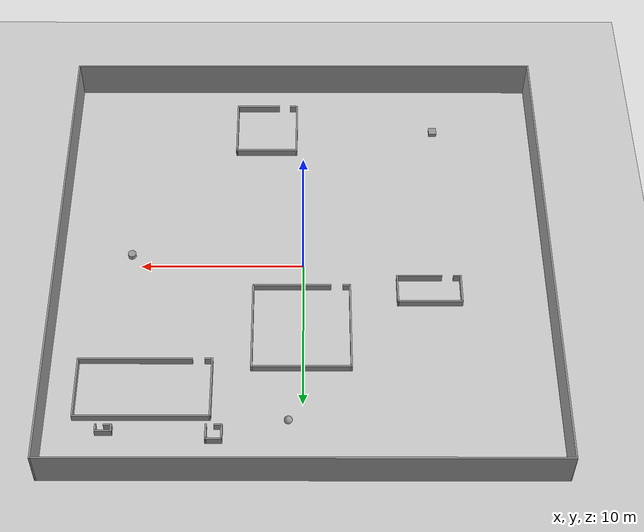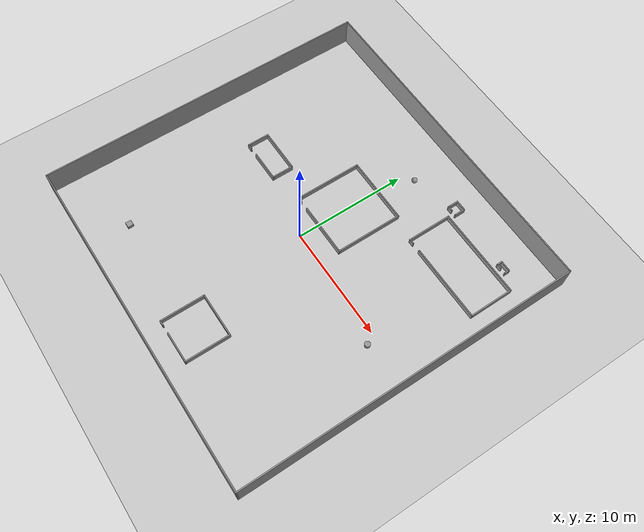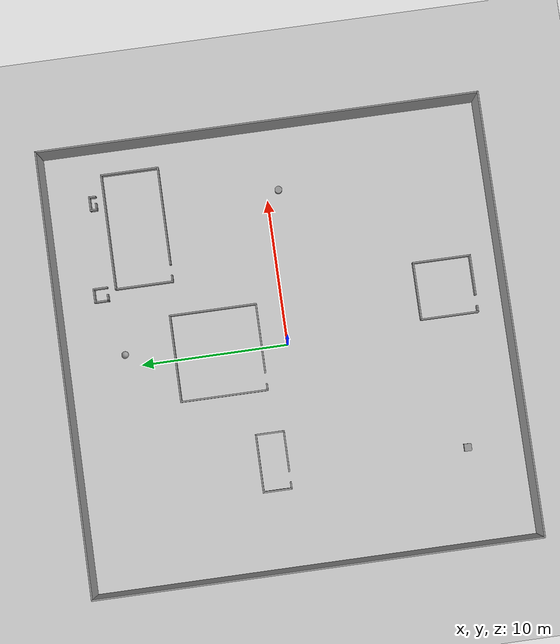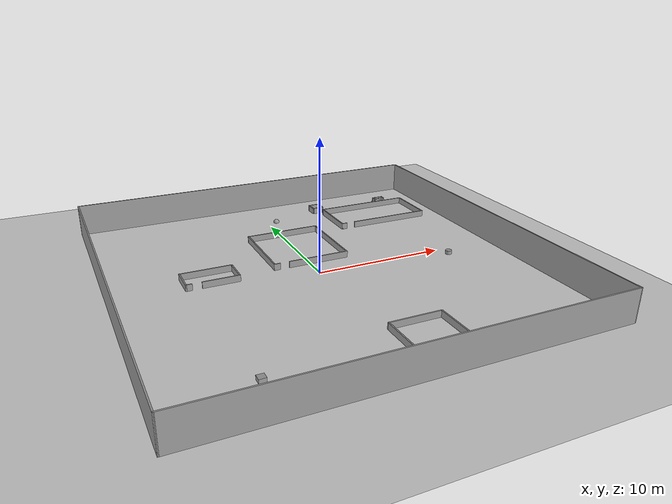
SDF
<sdf version="1.6">
  <world name="default">
    <light name="sun" type="directional">
      <cast_shadows>1</cast_shadows>
      <pose frame="">0 0 10 0 -0 0</pose>
      <diffuse>0.8 0.8 0.8 1</diffuse>
      <specular>0.2 0.2 0.2 1</specular>
      <attenuation>
        <range>1000</range>
        <constant>0.9</constant>
        <linear>0.01</linear>
        <quadratic>0.001</quadratic>
      </attenuation>
      <direction>-0.5 0.1 -0.9</direction>
    </light>
    <model name="ground_plane">
      <static>1</static>
      <link name="link">
        <collision name="collision">
          <geometry>
            <plane>
              <normal>0 0 1</normal>
              <size>30 30</size>
            </plane>
          </geometry>
          <surface>
            <contact>
              <collide_bitmask>65535</collide_bitmask>
              <ode />
            </contact>
            <friction>
              <ode>
                <mu>100</mu>
                <mu2>50</mu2>
              </ode>
              <torsional>
                <ode />
              </torsional>
            </friction>
            <bounce />
          </surface>
          <max_contacts>15</max_contacts>
        </collision>
        <visual name="visual">
          <cast_shadows>0</cast_shadows>
          <geometry>
            <plane>
              <normal>0 0 1</normal>
              <size>30 30</size>
            </plane>
          </geometry>
          <material>
            <script>
              <uri>file://media/materials/scripts/gazebo.material</uri>
              <name>Gazebo/Grey</name>
            </script>
          </material>
        </visual>
        <self_collide>0</self_collide>
        <enable_wind>0</enable_wind>
        <kinematic>0</kinematic>
      </link>
    </model>
     <model name="outsidewall.sdf">
    <pose frame="">0 0 0 0 -0 0</pose>
    <link name="Wall_3">
      <collision name="Wall_3_Collision">
        <geometry>
          <box>
            <size>30 0.10 2.5</size>
          </box>
        </geometry>
        <pose frame="">0 0 1.25 0 -0 0</pose>
      </collision>
      <visual name="Wall_3_Visual">
        <pose frame="">0 0 1.25 0 -0 0</pose>
        <geometry>
          <box>
            <size>30 0.10 2.5</size>
          </box>
        </geometry>
        <material>
          <script>
            <uri>file://media/materials/scripts/gazebo.material</uri>
            <name>Gazebo/Grey</name>
          </script>
          <ambient>1 1 1 1</ambient>
        </material>
        <meta>
          <layer>0</layer>
        </meta>
      </visual>
      <pose frame="">0 14.95 0 0 -0 0</pose>
    </link>
    <link name="Wall_5">
      <collision name="Wall_5_Collision">
        <geometry>
          <box>
            <size>30 0.10 2.5</size>
          </box>
        </geometry>
        <pose frame="">0 0 1.25 0 -0 0</pose>
      </collision>
      <visual name="Wall_5_Visual">
        <pose frame="">0 0 1.25 0 -0 0</pose>
        <geometry>
          <box>
            <size>30 0.10 2.5</size>
          </box>
        </geometry>
        <material>
          <script>
            <uri>file://media/materials/scripts/gazebo.material</uri>
            <name>Gazebo/Grey</name>
          </script>
          <ambient>1 1 1 1</ambient>
        </material>
        <meta>
          <layer>0</layer>
        </meta>
      </visual>
      <pose frame="">-14.95 0 0 0 -0 1.5707</pose>
    </link>
    <link name="Wall_6">
      <collision name="Wall_6_Collision">
        <geometry>
          <box>
            <size>30 0.10 2.5</size>
          </box>
        </geometry>
        <pose frame="">0 0 1.25 0 -0 0</pose>
      </collision>
      <visual name="Wall_6_Visual">
        <pose frame="">0 0 1.25 0 -0 0</pose>
        <geometry>
          <box>
            <size>30 0.10 2.5</size>
          </box>
        </geometry>
        <material>
          <script>
            <uri>file://media/materials/scripts/gazebo.material</uri>
            <name>Gazebo/Grey</name>
          </script>
          <ambient>1 1 1 1</ambient>
        </material>
        <meta>
          <layer>0</layer>
        </meta>
      </visual>
      <pose frame="">0 -14.95 0 0 -0 0</pose>
    </link>
    <link name="Wall_7">
      <collision name="Wall_7_Collision">
        <geometry>
          <box>
            <size>30 0.10 2.5</size>
          </box>
        </geometry>
        <pose frame="">0 0 1.25 0 -0 0</pose>
      </collision>
      <visual name="Wall_7_Visual">
        <pose frame="">0 0 1.25 0 -0 0</pose>
        <geometry>
          <box>
            <size>30 0.10 2.5</size>
          </box>
        </geometry>
        <material>
          <script>
            <uri>file://media/materials/scripts/gazebo.material</uri>
            <name>Gazebo/Grey</name>
          </script>
          <ambient>1 1 1 1</ambient>
        </material>
        <meta>
          <layer>0</layer>
        </meta>
      </visual>
      <pose frame="">14.95 0 0 0 -0 1.5707</pose>
    </link>
    <static>1</static>
  </model>
    <gravity>0 0 -9.8</gravity>
    <magnetic_field>6e-06 2.3e-05 -4.2e-05</magnetic_field>
    <atmosphere type="adiabatic" />
    <physics default="0" name="default_physics" type="ode">
      <max_step_size>0.001</max_step_size>
      <real_time_factor>1</real_time_factor>
      <real_time_update_rate>1000</real_time_update_rate>
    </physics>
    <scene>
      <ambient>0.4 0.4 0.4 1</ambient>
      <background>0.7 0.7 0.7 1</background>
      <shadows>1</shadows>
    </scene>
    <audio>
      <device>default</device>
    </audio>
    <wind />
    <spherical_coordinates>
      <surface_model>EARTH_WGS84</surface_model>
      <latitude_deg>0</latitude_deg>
      <longitude_deg>0</longitude_deg>
      <elevation>0</elevation>
      <heading_deg>0</heading_deg>
    </spherical_coordinates>
    <gui fullscreen="0">
      <camera name="user_camera">
        <pose frame="">17.6964 -3.39131 8.77294 0 0.343643 2.9522</pose>
        <view_controller>orbit</view_controller>
        <projection_type>perspective</projection_type>
      </camera>
    </gui>

  <model name="shape4">
    <pose frame="">5.1 12.1 0 0 -0 0</pose>
    <link name="Wall_14">
      <collision name="Wall_14_Collision">
        <geometry>
          <box>
            <size>1 0.1 0.5</size>
          </box>
        </geometry>
        <pose frame="">0 0 0.25 0 -0 0</pose>
      </collision>
      <visual name="Wall_14_Visual">
        <pose frame="">0 0 0.25 0 -0 0</pose>
        <geometry>
          <box>
            <size>1 0.1 0.5</size>
          </box>
        </geometry>
        <material>
          <script>
            <uri>file://media/materials/scripts/gazebo.material</uri>
            <name>Gazebo/Grey</name>
          </script>
          <ambient>1 1 1 1</ambient>
        </material>
        <meta>
          <layer>0</layer>
        </meta>
      </visual>
      <pose frame="">-0 0.45 0 0 -0 0</pose>
    </link>
    <link name="Wall_15">
      <collision name="Wall_15_Collision">
        <geometry>
          <box>
            <size>1 0.1 0.5</size>
          </box>
        </geometry>
        <pose frame="">0 0 0.25 0 -0 0</pose>
      </collision>
      <visual name="Wall_15_Visual">
        <pose frame="">0 0 0.25 0 -0 0</pose>
        <geometry>
          <box>
            <size>1 0.1 0.5</size>
          </box>
        </geometry>
        <material>
          <script>
            <uri>file://media/materials/scripts/gazebo.material</uri>
            <name>Gazebo/Grey</name>
          </script>
          <ambient>1 1 1 1</ambient>
        </material>
        <meta>
          <layer>0</layer>
        </meta>
      </visual>
      <pose frame="">0.45 -0 0 0 -0 -1.5708</pose>
    </link>
    <link name="Wall_17">
      <collision name="Wall_17_Collision">
        <geometry>
          <box>
            <size>1 0.1 0.5</size>
          </box>
        </geometry>
        <pose frame="">0 0 0.25 0 -0 0</pose>
      </collision>
      <visual name="Wall_17_Visual">
        <pose frame="">0 0 0.25 0 -0 0</pose>
        <geometry>
          <box>
            <size>1 0.1 0.5</size>
          </box>
        </geometry>
        <material>
          <script>
            <uri>file://media/materials/scripts/gazebo.material</uri>
            <name>Gazebo/Grey</name>
          </script>
          <ambient>1 1 1 1</ambient>
        </material>
        <meta>
          <layer>0</layer>
        </meta>
      </visual>
      <pose frame="">-0.45 -0 0 0 -0 -1.5708</pose>
    </link>
    <link name="Wall_18">
      <collision name="Wall_18_Collision">
        <geometry>
          <box>
            <size>0.5 0.1 0.5</size>
          </box>
        </geometry>
        <pose frame="">0 0 0.25 0 -0 0</pose>
      </collision>
      <visual name="Wall_18_Visual">
        <pose frame="">0 0 0.25 0 -0 0</pose>
        <geometry>
          <box>
            <size>0.5 0.1 0.5</size>
          </box>
        </geometry>
        <material>
          <script>
            <uri>file://media/materials/scripts/gazebo.material</uri>
            <name>Gazebo/Grey</name>
          </script>
          <ambient>1 1 1 1</ambient>
        </material>
        <meta>
          <layer>0</layer>
        </meta>
      </visual>
      <pose frame="">-0.25 -0.45 0 0 -0 0</pose>
    </link>
    <static>1</static>
  </model>
<model name="cylinder_d=50">
    <link name="link_0">
      <inertial>
        <mass>1</mass>
        <inertia>
          <ixx>0.145833</ixx>
          <ixy>0</ixy>
          <ixz>0</ixz>
          <iyy>0.145833</iyy>
          <iyz>0</iyz>
          <izz>0.125</izz>
        </inertia>
        <pose frame="">0 0 0 0 -0 0</pose>
      </inertial>
      <pose frame="">10.65 -0.85 0 0 -0 0</pose>
      <gravity>1</gravity>
      <self_collide>0</self_collide>
      <kinematic>0</kinematic>
      <enable_wind>0</enable_wind>
      <visual name="visual">
        <pose frame="">0 0 0 0 -0 0</pose>
        <geometry>
          <cylinder>
            <radius>0.25</radius>
            <length>0.5</length>
          </cylinder>
        </geometry>
        <material>
          <lighting>1</lighting>
          <script>
            <uri>file://media/materials/scripts/gazebo.material</uri>
            <name>Gazebo/Grey</name>
          </script>
          <shader type="vertex">
            <normal_map>__default__</normal_map>
          </shader>
          <ambient>0.3 0.3 0.3 1</ambient>
          <diffuse>0.7 0.7 0.7 1</diffuse>
          <specular>0.01 0.01 0.01 1</specular>
          <emissive>0 0 0 1</emissive>
        </material>
        <transparency>0</transparency>
        <cast_shadows>1</cast_shadows>
      </visual>
      <collision name="collision">
        <laser_retro>0</laser_retro>
        <max_contacts>10</max_contacts>
        <pose frame="">0 0 0 0 -0 0</pose>
        <geometry>
          <cylinder>
            <radius>0.25</radius>
            <length>0.5</length>
          </cylinder>
        </geometry>
        <surface>
          <friction>
            <ode>
              <mu>1</mu>
              <mu2>1</mu2>
              <fdir1>0 0 0</fdir1>
              <slip1>0</slip1>
              <slip2>0</slip2>
            </ode>
            <torsional>
              <coefficient>1</coefficient>
              <patch_radius>0</patch_radius>
              <surface_radius>0</surface_radius>
              <use_patch_radius>1</use_patch_radius>
              <ode>
                <slip>0</slip>
              </ode>
            </torsional>
          </friction>
          <bounce>
            <restitution_coefficient>0</restitution_coefficient>
            <threshold>1e+06</threshold>
          </bounce>
          <contact>
            <collide_without_contact>0</collide_without_contact>
            <collide_without_contact_bitmask>1</collide_without_contact_bitmask>
            <collide_bitmask>1</collide_bitmask>
            <ode>
              <soft_cfm>0</soft_cfm>
              <soft_erp>0.2</soft_erp>
              <kp>1e+13</kp>
              <kd>1</kd>
              <max_vel>0.01</max_vel>
              <min_depth>0</min_depth>
            </ode>
            <bullet>
              <split_impulse>1</split_impulse>
              <split_impulse_penetration_threshold>-0.01</split_impulse_penetration_threshold>
              <soft_cfm>0</soft_cfm>
              <soft_erp>0.2</soft_erp>
              <kp>1e+13</kp>
              <kd>1</kd>
            </bullet>
          </contact>
        </surface>
      </collision>
    </link>
    <static>0</static>
    <allow_auto_disable>1</allow_auto_disable>
  </model>
<model name="ball_d=50">
    <link name="link_1">
      <inertial>
        <mass>1</mass>
        <inertia>
          <ixx>0.1</ixx>
          <ixy>0</ixy>
          <ixz>0</ixz>
          <iyy>0.1</iyy>
          <iyz>0</iyz>
          <izz>0.1</izz>
        </inertia>
        <pose frame="">0 0 0 0 -0 0</pose>
      </inertial>
      <pose frame="">0.85 11.05 0 0 -0 0</pose>
      <gravity>1</gravity>
      <self_collide>0</self_collide>
      <kinematic>0</kinematic>
      <enable_wind>0</enable_wind>
      <visual name="visual">
        <pose frame="">0 0 0 0 -0 0</pose>
        <geometry>
          <sphere>
            <radius>0.25</radius>
          </sphere>
        </geometry>
        <material>
          <lighting>1</lighting>
          <script>
            <uri>file://media/materials/scripts/gazebo.material</uri>
            <name>Gazebo/Grey</name>
          </script>
          <shader type="vertex">
            <normal_map>__default__</normal_map>
          </shader>
          <ambient>0.3 0.3 0.3 1</ambient>
          <diffuse>0.7 0.7 0.7 1</diffuse>
          <specular>0.01 0.01 0.01 1</specular>
          <emissive>0 0 0 1</emissive>
        </material>
        <transparency>0</transparency>
        <cast_shadows>1</cast_shadows>
      </visual>
      <collision name="collision">
        <laser_retro>0</laser_retro>
        <max_contacts>10</max_contacts>
        <pose frame="">0 0 0 0 -0 0</pose>
        <geometry>
          <sphere>
            <radius>0.25</radius>
          </sphere>
        </geometry>
        <surface>
          <friction>
            <ode>
              <mu>1</mu>
              <mu2>1</mu2>
              <fdir1>0 0 0</fdir1>
              <slip1>0</slip1>
              <slip2>0</slip2>
            </ode>
            <torsional>
              <coefficient>1</coefficient>
              <patch_radius>0</patch_radius>
              <surface_radius>0</surface_radius>
              <use_patch_radius>1</use_patch_radius>
              <ode>
                <slip>0</slip>
              </ode>
            </torsional>
          </friction>
          <bounce>
            <restitution_coefficient>0</restitution_coefficient>
            <threshold>1e+06</threshold>
          </bounce>
          <contact>
            <collide_without_contact>0</collide_without_contact>
            <collide_without_contact_bitmask>1</collide_without_contact_bitmask>
            <collide_bitmask>1</collide_bitmask>
            <ode>
              <soft_cfm>0</soft_cfm>
              <soft_erp>0.2</soft_erp>
              <kp>1e+13</kp>
              <kd>1</kd>
              <max_vel>0.01</max_vel>
              <min_depth>0</min_depth>
            </ode>
            <bullet>
              <split_impulse>1</split_impulse>
              <split_impulse_penetration_threshold>-0.01</split_impulse_penetration_threshold>
              <soft_cfm>0</soft_cfm>
              <soft_erp>0.2</soft_erp>
              <kp>1e+13</kp>
              <kd>1</kd>
            </bullet>
          </contact>
        </surface>
      </collision>
    </link>
    <static>0</static>
    <allow_auto_disable>1</allow_auto_disable>
  </model>
<model name="shape3">
    <pose frame="">9.3 9.1 0 0 -0 0</pose>
    <link name="Wall_11">
      <collision name="Wall_11_Collision">
        <geometry>
          <box>
            <size>4 0.1 0.5</size>
          </box>
        </geometry>
        <pose frame="">0 0 0.25 0 -0 0</pose>
      </collision>
      <visual name="Wall_11_Visual">
        <pose frame="">0 0 0.25 0 -0 0</pose>
        <geometry>
          <box>
            <size>4 0.1 0.5</size>
          </box>
        </geometry>
        <material>
          <script>
            <uri>file://media/materials/scripts/gazebo.material</uri>
            <name>Gazebo/Grey</name>
          </script>
          <ambient>1 1 1 1</ambient>
        </material>
        <meta>
          <layer>0</layer>
        </meta>
      </visual>
      <pose frame="">-3.95 0 0 0 -0 -1.5708</pose>
    </link>
    <link name="Wall_12">
      <collision name="Wall_12_Collision">
        <geometry>
          <box>
            <size>0.5 0.1 0.5</size>
          </box>
        </geometry>
        <pose frame="">0 0 0.25 0 -0 0</pose>
      </collision>
      <visual name="Wall_12_Visual">
        <pose frame="">0 0 0.25 0 -0 0</pose>
        <geometry>
          <box>
            <size>0.5 0.1 0.5</size>
          </box>
        </geometry>
        <material>
          <script>
            <uri>file://media/materials/scripts/gazebo.material</uri>
            <name>Gazebo/Grey</name>
          </script>
          <ambient>1 1 1 1</ambient>
        </material>
        <meta>
          <layer>0</layer>
        </meta>
      </visual>
      <pose frame="">-3.75 -1.95 0 0 -0 0</pose>
    </link>
    <link name="Wall_7">
      <collision name="Wall_7_Collision">
        <geometry>
          <box>
            <size>8 0.1 0.5</size>
          </box>
        </geometry>
        <pose frame="">0 0 0.25 0 -0 0</pose>
      </collision>
      <visual name="Wall_7_Visual">
        <pose frame="">0 0 0.25 0 -0 0</pose>
        <geometry>
          <box>
            <size>8 0.1 0.5</size>
          </box>
        </geometry>
        <material>
          <script>
            <uri>file://media/materials/scripts/gazebo.material</uri>
            <name>Gazebo/Grey</name>
          </script>
          <ambient>1 1 1 1</ambient>
        </material>
        <meta>
          <layer>0</layer>
        </meta>
      </visual>
      <pose frame="">-0 1.95 0 0 -0 0</pose>
    </link>
    <link name="Wall_8">
      <collision name="Wall_8_Collision">
        <geometry>
          <box>
            <size>4 0.1 0.5</size>
          </box>
        </geometry>
        <pose frame="">0 0 0.25 0 -0 0</pose>
      </collision>
      <visual name="Wall_8_Visual">
        <pose frame="">0 0 0.25 0 -0 0</pose>
        <geometry>
          <box>
            <size>4 0.1 0.5</size>
          </box>
        </geometry>
        <material>
          <script>
            <uri>file://media/materials/scripts/gazebo.material</uri>
            <name>Gazebo/Grey</name>
          </script>
          <ambient>1 1 1 1</ambient>
        </material>
        <meta>
          <layer>0</layer>
        </meta>
      </visual>
      <pose frame="">3.95 0 0 0 -0 -1.5708</pose>
    </link>
    <link name="Wall_9">
      <collision name="Wall_9_Collision">
        <geometry>
          <box>
            <size>6.8 0.1 0.5</size>
          </box>
        </geometry>
        <pose frame="">0 0 0.25 0 -0 0</pose>
      </collision>
      <visual name="Wall_9_Visual">
        <pose frame="">0 0 0.25 0 -0 0</pose>
        <geometry>
          <box>
            <size>6.8 0.1 0.5</size>
          </box>
        </geometry>
        <material>
          <script>
            <uri>file://media/materials/scripts/gazebo.material</uri>
            <name>Gazebo/Grey</name>
          </script>
          <ambient>1 1 1 1</ambient>
        </material>
        <meta>
          <layer>0</layer>
        </meta>
      </visual>
      <pose frame="">0.6 -1.95 0 0 -0 3.14159</pose>
    </link>
    <static>1</static>
  </model>
<model name="shape7">
    <pose frame="">0.1 4.7 0 0 -0 0</pose>
    <link name="Wall_34">
      <collision name="Wall_34_Collision">
        <geometry>
          <box>
            <size>6 0.1 0.5</size>
          </box>
        </geometry>
        <pose frame="">0 0 0.25 0 -0 0</pose>
      </collision>
      <visual name="Wall_34_Visual">
        <pose frame="">0 0 0.25 0 -0 0</pose>
        <geometry>
          <box>
            <size>6 0.1 0.5</size>
          </box>
        </geometry>
        <material>
          <script>
            <uri>file://media/materials/scripts/gazebo.material</uri>
            <name>Gazebo/Grey</name>
          </script>
          <ambient>1 1 1 1</ambient>
        </material>
        <meta>
          <layer>0</layer>
        </meta>
      </visual>
      <pose frame="">0 2.95 0 0 -0 0</pose>
    </link>
    <link name="Wall_35">
      <collision name="Wall_35_Collision">
        <geometry>
          <box>
            <size>6 0.1 0.5</size>
          </box>
        </geometry>
        <pose frame="">0 0 0.25 0 -0 0</pose>
      </collision>
      <visual name="Wall_35_Visual">
        <pose frame="">0 0 0.25 0 -0 0</pose>
        <geometry>
          <box>
            <size>6 0.1 0.5</size>
          </box>
        </geometry>
        <material>
          <script>
            <uri>file://media/materials/scripts/gazebo.material</uri>
            <name>Gazebo/Grey</name>
          </script>
          <ambient>1 1 1 1</ambient>
        </material>
        <meta>
          <layer>0</layer>
        </meta>
      </visual>
      <pose frame="">2.95 0 0 0 -0 -1.5708</pose>
    </link>
    <link name="Wall_36">
      <collision name="Wall_36_Collision">
        <geometry>
          <box>
            <size>4.8 0.1 0.5</size>
          </box>
        </geometry>
        <pose frame="">0 0 0.25 0 -0 0</pose>
      </collision>
      <visual name="Wall_36_Visual">
        <pose frame="">0 0 0.25 0 -0 0</pose>
        <geometry>
          <box>
            <size>4.8 0.1 0.5</size>
          </box>
        </geometry>
        <material>
          <script>
            <uri>file://media/materials/scripts/gazebo.material</uri>
            <name>Gazebo/Grey</name>
          </script>
          <ambient>1 1 1 1</ambient>
        </material>
        <meta>
          <layer>0</layer>
        </meta>
      </visual>
      <pose frame="">0.6 -2.95 0 0 -0 3.14159</pose>
    </link>
    <link name="Wall_38">
      <collision name="Wall_38_Collision">
        <geometry>
          <box>
            <size>6 0.1 0.5</size>
          </box>
        </geometry>
        <pose frame="">0 0 0.25 0 -0 0</pose>
      </collision>
      <visual name="Wall_38_Visual">
        <pose frame="">0 0 0.25 0 -0 0</pose>
        <geometry>
          <box>
            <size>6 0.1 0.5</size>
          </box>
        </geometry>
        <material>
          <script>
            <uri>file://media/materials/scripts/gazebo.material</uri>
            <name>Gazebo/Grey</name>
          </script>
          <ambient>1 1 1 1</ambient>
        </material>
        <meta>
          <layer>0</layer>
        </meta>
      </visual>
      <pose frame="">-2.95 0 0 0 -0 -1.5708</pose>
    </link>
    <link name="Wall_39">
      <collision name="Wall_39_Collision">
        <geometry>
          <box>
            <size>0.5 0.1 0.5</size>
          </box>
        </geometry>
        <pose frame="">0 0 0.25 0 -0 0</pose>
      </collision>
      <visual name="Wall_39_Visual">
        <pose frame="">0 0 0.25 0 -0 0</pose>
        <geometry>
          <box>
            <size>0.5 0.1 0.5</size>
          </box>
        </geometry>
        <material>
          <script>
            <uri>file://media/materials/scripts/gazebo.material</uri>
            <name>Gazebo/Grey</name>
          </script>
          <ambient>1 1 1 1</ambient>
        </material>
        <meta>
          <layer>0</layer>
        </meta>
      </visual>
      <pose frame="">-2.75 -2.95 0 0 -0 0</pose>
    </link>
    <static>1</static>
  </model>
<model name="shape6">
    <pose frame="">2.4 -11.2 0 0 -0 0</pose>
    <link name="Wall_27">
      <collision name="Wall_27_Collision">
        <geometry>
          <box>
            <size>4 0.1 0.5</size>
          </box>
        </geometry>
        <pose frame="">0 0 0.25 0 -0 0</pose>
      </collision>
      <visual name="Wall_27_Visual">
        <pose frame="">0 0 0.25 0 -0 0</pose>
        <geometry>
          <box>
            <size>4 0.1 0.5</size>
          </box>
        </geometry>
        <material>
          <script>
            <uri>file://media/materials/scripts/gazebo.material</uri>
            <name>Gazebo/Grey</name>
          </script>
          <ambient>1 1 1 1</ambient>
        </material>
        <meta>
          <layer>0</layer>
        </meta>
      </visual>
      <pose frame="">0 1.95 0 0 -0 0</pose>
    </link>
    <link name="Wall_28">
      <collision name="Wall_28_Collision">
        <geometry>
          <box>
            <size>4 0.1 0.5</size>
          </box>
        </geometry>
        <pose frame="">0 0 0.25 0 -0 0</pose>
      </collision>
      <visual name="Wall_28_Visual">
        <pose frame="">0 0 0.25 0 -0 0</pose>
        <geometry>
          <box>
            <size>4 0.1 0.5</size>
          </box>
        </geometry>
        <material>
          <script>
            <uri>file://media/materials/scripts/gazebo.material</uri>
            <name>Gazebo/Grey</name>
          </script>
          <ambient>1 1 1 1</ambient>
        </material>
        <meta>
          <layer>0</layer>
        </meta>
      </visual>
      <pose frame="">1.95 -0 0 0 -0 -1.5708</pose>
    </link>
    <link name="Wall_29">
      <collision name="Wall_29_Collision">
        <geometry>
          <box>
            <size>2.8 0.1 0.5</size>
          </box>
        </geometry>
        <pose frame="">0 0 0.25 0 -0 0</pose>
      </collision>
      <visual name="Wall_29_Visual">
        <pose frame="">0 0 0.25 0 -0 0</pose>
        <geometry>
          <box>
            <size>2.8 0.1 0.5</size>
          </box>
        </geometry>
        <material>
          <script>
            <uri>file://media/materials/scripts/gazebo.material</uri>
            <name>Gazebo/Grey</name>
          </script>
          <ambient>1 1 1 1</ambient>
        </material>
        <meta>
          <layer>0</layer>
        </meta>
      </visual>
      <pose frame="">0.6 -1.95 0 0 -0 3.14159</pose>
    </link>
    <link name="Wall_31">
      <collision name="Wall_31_Collision">
        <geometry>
          <box>
            <size>4 0.1 0.5</size>
          </box>
        </geometry>
        <pose frame="">0 0 0.25 0 -0 0</pose>
      </collision>
      <visual name="Wall_31_Visual">
        <pose frame="">0 0 0.25 0 -0 0</pose>
        <geometry>
          <box>
            <size>4 0.1 0.5</size>
          </box>
        </geometry>
        <material>
          <script>
            <uri>file://media/materials/scripts/gazebo.material</uri>
            <name>Gazebo/Grey</name>
          </script>
          <ambient>1 1 1 1</ambient>
        </material>
        <meta>
          <layer>0</layer>
        </meta>
      </visual>
      <pose frame="">-1.95 -0 0 0 -0 -1.5708</pose>
    </link>
    <link name="Wall_32">
      <collision name="Wall_32_Collision">
        <geometry>
          <box>
            <size>0.5 0.1 0.5</size>
          </box>
        </geometry>
        <pose frame="">0 0 0.25 0 -0 0</pose>
      </collision>
      <visual name="Wall_32_Visual">
        <pose frame="">0 0 0.25 0 -0 0</pose>
        <geometry>
          <box>
            <size>0.5 0.1 0.5</size>
          </box>
        </geometry>
        <material>
          <script>
            <uri>file://media/materials/scripts/gazebo.material</uri>
            <name>Gazebo/Grey</name>
          </script>
          <ambient>1 1 1 1</ambient>
        </material>
        <meta>
          <layer>0</layer>
        </meta>
      </visual>
      <pose frame="">-1.75 -1.95 0 0 -0 0</pose>
    </link>
    <static>1</static>
  </model>
<model name="shape0">
    <pose frame="">11.4 11.85 0 0 -0 0</pose>
    <link name="Wall_0">
      <pose frame="">0 0.2 0 0 -0 0</pose>
      <self_collide>0</self_collide>
      <enable_wind>0</enable_wind>
      <kinematic>0</kinematic>
      <gravity>1</gravity>
      <inertial>
        <mass>1</mass>
        <pose frame="">0 0 0 0 -0 0</pose>
        <inertia>
          <ixx>1</ixx>
          <ixy>0</ixy>
          <ixz>0</ixz>
          <iyy>1</iyy>
          <iyz>0</iyz>
          <izz>1</izz>
        </inertia>
      </inertial>
      <visual name="Wall_0_Visual">
        <pose frame="">0 0 0.25 0 -0 0</pose>
        <geometry>
          <box>
            <size>1 0.1 0.5</size>
          </box>
        </geometry>
        <material>
          <script>
            <uri>file://media/materials/scripts/gazebo.material</uri>
            <name>Gazebo/Grey</name>
          </script>
          <ambient>1 1 1 1</ambient>
          <shader type="vertex">
            <normal_map>__default__</normal_map>
          </shader>
          <diffuse>0.7 0.7 0.7 1</diffuse>
          <specular>0.01 0.01 0.01 1</specular>
          <emissive>0 0 0 1</emissive>
        </material>
        <meta>
          <layer>0</layer>
        </meta>
        <transparency>0</transparency>
        <cast_shadows>1</cast_shadows>
      </visual>
      <collision name="Wall_0_Collision">
        <laser_retro>0</laser_retro>
        <max_contacts>10</max_contacts>
        <pose frame="">0 0 0.25 0 -0 0</pose>
        <geometry>
          <box>
            <size>1 0.1 0.5</size>
          </box>
        </geometry>
        <surface>
          <friction>
            <ode>
              <mu>1</mu>
              <mu2>1</mu2>
              <fdir1>0 0 0</fdir1>
              <slip1>0</slip1>
              <slip2>0</slip2>
            </ode>
            <torsional>
              <coefficient>1</coefficient>
              <patch_radius>0</patch_radius>
              <surface_radius>0</surface_radius>
              <use_patch_radius>1</use_patch_radius>
              <ode>
                <slip>0</slip>
              </ode>
            </torsional>
          </friction>
          <bounce>
            <restitution_coefficient>0</restitution_coefficient>
            <threshold>1e+06</threshold>
          </bounce>
          <contact>
            <collide_without_contact>0</collide_without_contact>
            <collide_without_contact_bitmask>1</collide_without_contact_bitmask>
            <collide_bitmask>1</collide_bitmask>
            <ode>
              <soft_cfm>0</soft_cfm>
              <soft_erp>0.2</soft_erp>
              <kp>1e+13</kp>
              <kd>1</kd>
              <max_vel>0.01</max_vel>
              <min_depth>0</min_depth>
            </ode>
            <bullet>
              <split_impulse>1</split_impulse>
              <split_impulse_penetration_threshold>-0.01</split_impulse_penetration_threshold>
              <soft_cfm>0</soft_cfm>
              <soft_erp>0.2</soft_erp>
              <kp>1e+13</kp>
              <kd>1</kd>
            </bullet>
          </contact>
        </surface>
      </collision>
    </link>
    <link name="Wall_2">
      <pose frame="">-0.45 0 0.01 0 0 -1.5708</pose>
      <self_collide>0</self_collide>
      <enable_wind>0</enable_wind>
      <kinematic>0</kinematic>
      <gravity>1</gravity>
      <inertial>
        <mass>1</mass>
        <pose frame="">0 0 0 0 -0 0</pose>
        <inertia>
          <ixx>1</ixx>
          <ixy>0</ixy>
          <ixz>0</ixz>
          <iyy>1</iyy>
          <iyz>0</iyz>
          <izz>1</izz>
        </inertia>
      </inertial>
      <visual name="Wall_2_Visual">
        <pose frame="">0 0 0.25 0 -0 0</pose>
        <geometry>
          <box>
            <size>0.5 0.1 0.5</size>
          </box>
        </geometry>
        <material>
          <script>
            <uri>file://media/materials/scripts/gazebo.material</uri>
            <name>Gazebo/Grey</name>
          </script>
          <ambient>1 1 1 1</ambient>
          <shader type="vertex">
            <normal_map>__default__</normal_map>
          </shader>
          <diffuse>0.7 0.7 0.7 1</diffuse>
          <specular>0.01 0.01 0.01 1</specular>
          <emissive>0 0 0 1</emissive>
        </material>
        <meta>
          <layer>0</layer>
        </meta>
        <transparency>0</transparency>
        <cast_shadows>1</cast_shadows>
      </visual>
      <collision name="Wall_2_Collision">
        <laser_retro>0</laser_retro>
        <max_contacts>10</max_contacts>
        <pose frame="">0 0 0.25 0 -0 0</pose>
        <geometry>
          <box>
            <size>0.5 0.1 0.5</size>
          </box>
        </geometry>
        <surface>
          <friction>
            <ode>
              <mu>1</mu>
              <mu2>1</mu2>
              <fdir1>0 0 0</fdir1>
              <slip1>0</slip1>
              <slip2>0</slip2>
            </ode>
            <torsional>
              <coefficient>1</coefficient>
              <patch_radius>0</patch_radius>
              <surface_radius>0</surface_radius>
              <use_patch_radius>1</use_patch_radius>
              <ode>
                <slip>0</slip>
              </ode>
            </torsional>
          </friction>
          <bounce>
            <restitution_coefficient>0</restitution_coefficient>
            <threshold>1e+06</threshold>
          </bounce>
          <contact>
            <collide_without_contact>0</collide_without_contact>
            <collide_without_contact_bitmask>1</collide_without_contact_bitmask>
            <collide_bitmask>1</collide_bitmask>
            <ode>
              <soft_cfm>0</soft_cfm>
              <soft_erp>0.2</soft_erp>
              <kp>1e+13</kp>
              <kd>1</kd>
              <max_vel>0.01</max_vel>
              <min_depth>0</min_depth>
            </ode>
            <bullet>
              <split_impulse>1</split_impulse>
              <split_impulse_penetration_threshold>-0.01</split_impulse_penetration_threshold>
              <soft_cfm>0</soft_cfm>
              <soft_erp>0.2</soft_erp>
              <kp>1e+13</kp>
              <kd>1</kd>
            </bullet>
          </contact>
        </surface>
      </collision>
    </link>
    <link name="Wall_4">
      <pose frame="">0.45 0 0 0 0 -1.5708</pose>
      <self_collide>0</self_collide>
      <enable_wind>0</enable_wind>
      <kinematic>0</kinematic>
      <gravity>1</gravity>
      <inertial>
        <mass>1</mass>
        <pose frame="">0 0 0 0 -0 0</pose>
        <inertia>
          <ixx>1</ixx>
          <ixy>0</ixy>
          <ixz>0</ixz>
          <iyy>1</iyy>
          <iyz>0</iyz>
          <izz>1</izz>
        </inertia>
      </inertial>
      <visual name="Wall_4_Visual">
        <pose frame="">0 0 0.25 0 -0 0</pose>
        <geometry>
          <box>
            <size>0.5 0.1 0.5</size>
          </box>
        </geometry>
        <material>
          <script>
            <uri>file://media/materials/scripts/gazebo.material</uri>
            <name>Gazebo/Grey</name>
          </script>
          <ambient>1 1 1 1</ambient>
          <shader type="vertex">
            <normal_map>__default__</normal_map>
          </shader>
          <diffuse>0.7 0.7 0.7 1</diffuse>
          <specular>0.01 0.01 0.01 1</specular>
          <emissive>0 0 0 1</emissive>
        </material>
        <meta>
          <layer>0</layer>
        </meta>
        <transparency>0</transparency>
        <cast_shadows>1</cast_shadows>
      </visual>
      <collision name="Wall_4_Collision">
        <laser_retro>0</laser_retro>
        <max_contacts>10</max_contacts>
        <pose frame="">0 0 0.25 0 -0 0</pose>
        <geometry>
          <box>
            <size>0.5 0.1 0.5</size>
          </box>
        </geometry>
        <surface>
          <friction>
            <ode>
              <mu>1</mu>
              <mu2>1</mu2>
              <fdir1>0 0 0</fdir1>
              <slip1>0</slip1>
              <slip2>0</slip2>
            </ode>
            <torsional>
              <coefficient>1</coefficient>
              <patch_radius>0</patch_radius>
              <surface_radius>0</surface_radius>
              <use_patch_radius>1</use_patch_radius>
              <ode>
                <slip>0</slip>
              </ode>
            </torsional>
          </friction>
          <bounce>
            <restitution_coefficient>0</restitution_coefficient>
            <threshold>1e+06</threshold>
          </bounce>
          <contact>
            <collide_without_contact>0</collide_without_contact>
            <collide_without_contact_bitmask>1</collide_without_contact_bitmask>
            <collide_bitmask>1</collide_bitmask>
            <ode>
              <soft_cfm>0</soft_cfm>
              <soft_erp>0.2</soft_erp>
              <kp>1e+13</kp>
              <kd>1</kd>
              <max_vel>0.01</max_vel>
              <min_depth>0</min_depth>
            </ode>
            <bullet>
              <split_impulse>1</split_impulse>
              <split_impulse_penetration_threshold>-0.01</split_impulse_penetration_threshold>
              <soft_cfm>0</soft_cfm>
              <soft_erp>0.2</soft_erp>
              <kp>1e+13</kp>
              <kd>1</kd>
            </bullet>
          </contact>
        </surface>
      </collision>
    </link>
    <link name="Wall_7">
      <pose frame="">-0.25 -0.2 0 0 -0 0</pose>
      <self_collide>0</self_collide>
      <enable_wind>0</enable_wind>
      <kinematic>0</kinematic>
      <gravity>1</gravity>
      <inertial>
        <mass>1</mass>
        <pose frame="">0 0 0 0 -0 0</pose>
        <inertia>
          <ixx>1</ixx>
          <ixy>0</ixy>
          <ixz>0</ixz>
          <iyy>1</iyy>
          <iyz>0</iyz>
          <izz>1</izz>
        </inertia>
      </inertial>
      <visual name="Wall_7_Visual">
        <pose frame="">0 0 0.25 0 -0 0</pose>
        <geometry>
          <box>
            <size>0.5 0.1 0.5</size>
          </box>
        </geometry>
        <material>
          <script>
            <uri>file://media/materials/scripts/gazebo.material</uri>
            <name>Gazebo/Grey</name>
          </script>
          <ambient>1 1 1 1</ambient>
          <shader type="vertex">
            <normal_map>__default__</normal_map>
          </shader>
          <diffuse>0.7 0.7 0.7 1</diffuse>
          <specular>0.01 0.01 0.01 1</specular>
          <emissive>0 0 0 1</emissive>
        </material>
        <meta>
          <layer>0</layer>
        </meta>
        <transparency>0</transparency>
        <cast_shadows>1</cast_shadows>
      </visual>
      <collision name="Wall_7_Collision">
        <laser_retro>0</laser_retro>
        <max_contacts>10</max_contacts>
        <pose frame="">0 0 0.25 0 -0 0</pose>
        <geometry>
          <box>
            <size>0.5 0.1 0.5</size>
          </box>
        </geometry>
        <surface>
          <friction>
            <ode>
              <mu>1</mu>
              <mu2>1</mu2>
              <fdir1>0 0 0</fdir1>
              <slip1>0</slip1>
              <slip2>0</slip2>
            </ode>
            <torsional>
              <coefficient>1</coefficient>
              <patch_radius>0</patch_radius>
              <surface_radius>0</surface_radius>
              <use_patch_radius>1</use_patch_radius>
              <ode>
                <slip>0</slip>
              </ode>
            </torsional>
          </friction>
          <bounce>
            <restitution_coefficient>0</restitution_coefficient>
            <threshold>1e+06</threshold>
          </bounce>
          <contact>
            <collide_without_contact>0</collide_without_contact>
            <collide_without_contact_bitmask>1</collide_without_contact_bitmask>
            <collide_bitmask>1</collide_bitmask>
            <ode>
              <soft_cfm>0</soft_cfm>
              <soft_erp>0.2</soft_erp>
              <kp>1e+13</kp>
              <kd>1</kd>
              <max_vel>0.01</max_vel>
              <min_depth>0</min_depth>
            </ode>
            <bullet>
              <split_impulse>1</split_impulse>
              <split_impulse_penetration_threshold>-0.01</split_impulse_penetration_threshold>
              <soft_cfm>0</soft_cfm>
              <soft_erp>0.2</soft_erp>
              <kp>1e+13</kp>
              <kd>1</kd>
            </bullet>
          </contact>
        </surface>
      </collision>
    </link>
    <static>1</static>
    <allow_auto_disable>1</allow_auto_disable>
  </model>
<model name="box_d=50">
    <link name="link_2">
      <inertial>
        <mass>1</mass>
        <inertia>
          <ixx>0.166667</ixx>
          <ixy>0</ixy>
          <ixz>0</ixz>
          <iyy>0.166667</iyy>
          <iyz>0</iyz>
          <izz>0.166667</izz>
        </inertia>
        <pose frame="">0 0 0 0 -0 0</pose>
      </inertial>
      <pose frame="">-8.55 -11.15 0 0 -0 0</pose>
      <gravity>1</gravity>
      <self_collide>0</self_collide>
      <kinematic>0</kinematic>
      <enable_wind>0</enable_wind>
      <visual name="visual">
        <pose frame="">0 0 0 0 -0 0</pose>
        <geometry>
          <box>
            <size>0.5 0.5 0.5</size>
          </box>
        </geometry>
        <material>
          <lighting>1</lighting>
          <script>
            <uri>file://media/materials/scripts/gazebo.material</uri>
            <name>Gazebo/Grey</name>
          </script>
          <shader type="vertex">
            <normal_map>__default__</normal_map>
          </shader>
          <ambient>0.3 0.3 0.3 1</ambient>
          <diffuse>0.7 0.7 0.7 1</diffuse>
          <specular>0.01 0.01 0.01 1</specular>
          <emissive>0 0 0 1</emissive>
        </material>
        <transparency>0</transparency>
        <cast_shadows>1</cast_shadows>
      </visual>
      <collision name="collision">
        <laser_retro>0</laser_retro>
        <max_contacts>10</max_contacts>
        <pose frame="">0 0 0 0 -0 0</pose>
        <geometry>
          <box>
            <size>0.5 0.5 0.5</size>
          </box>
        </geometry>
        <surface>
          <friction>
            <ode>
              <mu>1</mu>
              <mu2>1</mu2>
              <fdir1>0 0 0</fdir1>
              <slip1>0</slip1>
              <slip2>0</slip2>
            </ode>
            <torsional>
              <coefficient>1</coefficient>
              <patch_radius>0</patch_radius>
              <surface_radius>0</surface_radius>
              <use_patch_radius>1</use_patch_radius>
              <ode>
                <slip>0</slip>
              </ode>
            </torsional>
          </friction>
          <bounce>
            <restitution_coefficient>0</restitution_coefficient>
            <threshold>1e+06</threshold>
          </bounce>
          <contact>
            <collide_without_contact>0</collide_without_contact>
            <collide_without_contact_bitmask>1</collide_without_contact_bitmask>
            <collide_bitmask>1</collide_bitmask>
            <ode>
              <soft_cfm>0</soft_cfm>
              <soft_erp>0.2</soft_erp>
              <kp>1e+13</kp>
              <kd>1</kd>
              <max_vel>0.01</max_vel>
              <min_depth>0</min_depth>
            </ode>
            <bullet>
              <split_impulse>1</split_impulse>
              <split_impulse_penetration_threshold>-0.01</split_impulse_penetration_threshold>
              <soft_cfm>0</soft_cfm>
              <soft_erp>0.2</soft_erp>
              <kp>1e+13</kp>
              <kd>1</kd>
            </bullet>
          </contact>
        </surface>
      </collision>
    </link>
    <static>0</static>
    <allow_auto_disable>1</allow_auto_disable>
  </model>
<model name="shape2">
    <pose frame="">-7.7 2 0 0 -0 0</pose>
    <link name="Wall_0">
      <collision name="Wall_0_Collision">
        <geometry>
          <box>
            <size>3.98685 0.1 0.5</size>
          </box>
        </geometry>
        <pose frame="">0 0 0.25 0 -0 0</pose>
      </collision>
      <visual name="Wall_0_Visual">
        <pose frame="">0 0 0.25 0 -0 0</pose>
        <geometry>
          <box>
            <size>3.98685 0.1 0.5</size>
          </box>
        </geometry>
        <material>
          <script>
            <uri>file://media/materials/scripts/gazebo.material</uri>
            <name>Gazebo/Grey</name>
          </script>
          <ambient>1 1 1 1</ambient>
        </material>
        <meta>
          <layer>0</layer>
        </meta>
      </visual>
      <pose frame="">0.003288 0.95 0 0 -0 0</pose>
    </link>
    <link name="Wall_1">
      <collision name="Wall_1_Collision">
        <geometry>
          <box>
            <size>2 0.1 0.5</size>
          </box>
        </geometry>
        <pose frame="">0 0 0.25 0 -0 0</pose>
      </collision>
      <visual name="Wall_1_Visual">
        <pose frame="">0 0 0.25 0 -0 0</pose>
        <geometry>
          <box>
            <size>2 0.1 0.5</size>
          </box>
        </geometry>
        <material>
          <script>
            <uri>file://media/materials/scripts/gazebo.material</uri>
            <name>Gazebo/Grey</name>
          </script>
          <ambient>1 1 1 1</ambient>
        </material>
        <meta>
          <layer>0</layer>
        </meta>
      </visual>
      <pose frame="">1.94671 0 0 0 -0 -1.5708</pose>
    </link>
    <link name="Wall_2">
      <collision name="Wall_2_Collision">
        <geometry>
          <box>
            <size>2.8 0.1 0.5</size>
          </box>
        </geometry>
        <pose frame="">0 0 0.25 0 -0 0</pose>
      </collision>
      <visual name="Wall_2_Visual">
        <pose frame="">0 0 0.25 0 -0 0</pose>
        <geometry>
          <box>
            <size>2.8 0.1 0.5</size>
          </box>
        </geometry>
        <material>
          <script>
            <uri>file://media/materials/scripts/gazebo.material</uri>
            <name>Gazebo/Grey</name>
          </script>
          <ambient>1 1 1 1</ambient>
        </material>
        <meta>
          <layer>0</layer>
        </meta>
      </visual>
      <pose frame="">0.596712 -0.95 0 0 -0 3.14159</pose>
    </link>
    <link name="Wall_4">
      <collision name="Wall_4_Collision">
        <geometry>
          <box>
            <size>2 0.1 0.5</size>
          </box>
        </geometry>
        <pose frame="">0 0 0.25 0 -0 0</pose>
      </collision>
      <visual name="Wall_4_Visual">
        <pose frame="">0 0 0.25 0 -0 0</pose>
        <geometry>
          <box>
            <size>2 0.1 0.5</size>
          </box>
        </geometry>
        <material>
          <script>
            <uri>file://media/materials/scripts/gazebo.material</uri>
            <name>Gazebo/Grey</name>
          </script>
          <ambient>1 1 1 1</ambient>
        </material>
        <meta>
          <layer>0</layer>
        </meta>
      </visual>
      <pose frame="">-1.94671 0 0 0 -0 -1.5708</pose>
    </link>
    <link name="Wall_5">
      <collision name="Wall_5_Collision">
        <geometry>
          <box>
            <size>0.5 0.1 0.5</size>
          </box>
        </geometry>
        <pose frame="">0 0 0.25 0 -0 0</pose>
      </collision>
      <visual name="Wall_5_Visual">
        <pose frame="">0 0 0.25 0 -0 0</pose>
        <geometry>
          <box>
            <size>0.5 0.1 0.5</size>
          </box>
        </geometry>
        <material>
          <script>
            <uri>file://media/materials/scripts/gazebo.material</uri>
            <name>Gazebo/Grey</name>
          </script>
          <ambient>1 1 1 1</ambient>
        </material>
        <meta>
          <layer>0</layer>
        </meta>
      </visual>
      <pose frame="">-1.74671 -0.95 0 0 -0 0</pose>
    </link>
    <static>1</static>
  </model>
</world>
</sdf>
